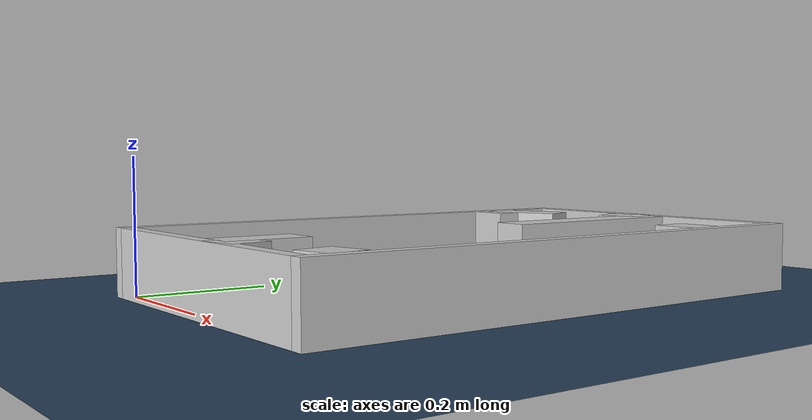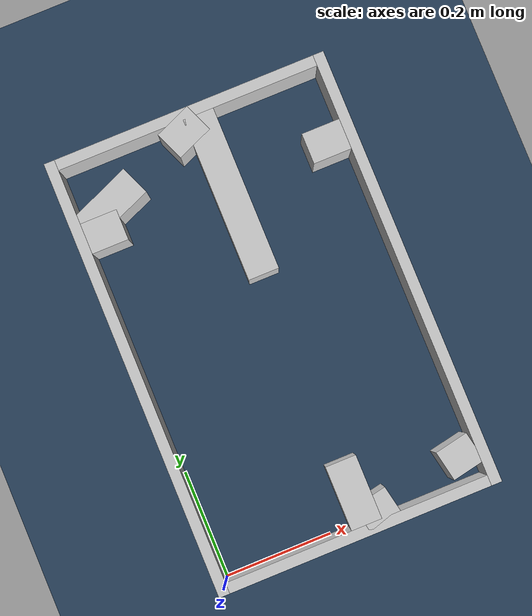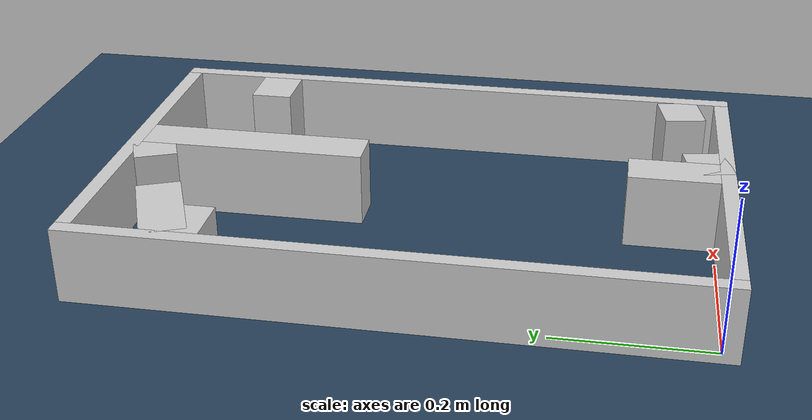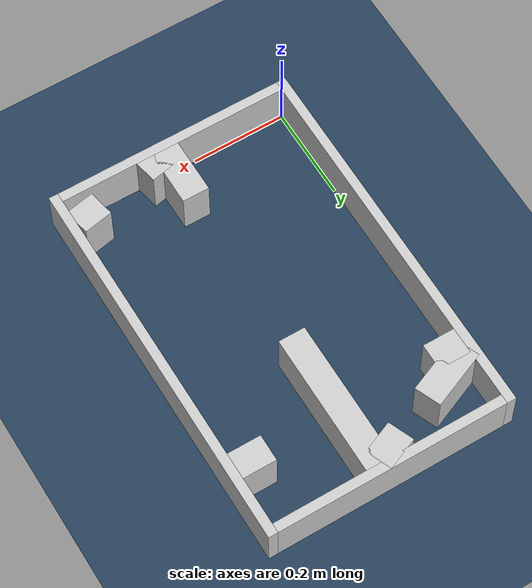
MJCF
<?xml version="1.0" ?>
<mujoco model="generated_real_template">
  <compiler angle="degree"/>
  <option timestep="0.002" integrator="implicitfast" iterations="100" cone="elliptic"/>
  <default>
    <geom density="1"/>
  </default>
  <asset>
    <texture builtin="gradient" height="3072" rgb1="0.3 0.5 0.7" rgb2="0 0 0" type="skybox" width="512"/>
    <texture builtin="checker" height="300" mark="edge" markrgb="0.8 0.8 0.8" name="groundplane" rgb1="0.2 0.3 0.4" rgb2="0.1 0.2 0.3" type="2d" width="300"/>
    <material name="groundplane" reflectance="0.2" texrepeat="5 5" texture="groundplane" texuniform="true"/>
  </asset>
  <worldbody>
    <light dir="0 0 -1" directional="true" pos="0 0 1.5"/>
    <geom name="floor" type="plane" condim="4" friction="0.5 0.005 0.001" material="groundplane" size="0 0 0.05"/>
    <body name="walls">
      <geom name="wall_boundary_left" type="box" condim="4" friction="1.0 0.005 0.0001" rgba="0.8 0.8 0.8 1" pos="-0.010000 0.387500 0.050000" euler="0 0 0.000000" size="0.010000 0.407500 0.050000"/>
      <geom name="wall_boundary_right" type="box" condim="4" friction="1.0 0.005 0.0001" rgba="0.8 0.8 0.8 1" pos="0.500000 0.387500 0.050000" euler="0 0 0.000000" size="0.010000 0.407500 0.050000"/>
      <geom name="wall_boundary_bottom" type="box" condim="4" friction="1.0 0.005 0.0001" rgba="0.8 0.8 0.8 1" pos="0.245000 -0.010000 0.050000" euler="0 0 0.000000" size="0.245000 0.010000 0.050000"/>
      <geom name="wall_boundary_top" type="box" condim="4" friction="1.0 0.005 0.0001" rgba="0.8 0.8 0.8 1" pos="0.245000 0.785000 0.050000" euler="0 0 0.000000" size="0.245000 0.010000 0.050000"/>
      <geom name="wall_inner_1_1" type="box" condim="4" friction="1.0 0.005 0.0001" rgba="0.8 0.8 0.8 1" pos="0.292135 0.014187 0.050000" euler="0 0 11.206119" size="0.032053 0.028500 0.050000"/>
      <geom name="wall_inner_1_2" type="box" condim="4" friction="1.0 0.005 0.0001" rgba="0.8 0.8 0.8 1" pos="0.459167 0.047279 0.050000" euler="0 0 11.206119" size="0.031433 0.028500 0.050000"/>
      <geom name="wall_inner_2_1" type="box" condim="4" friction="1.0 0.005 0.0001" rgba="0.8 0.8 0.8 1" pos="0.058858 0.683978 0.050000" euler="0 0 22.631594" size="0.063768 0.028500 0.050000"/>
      <geom name="wall_inner_2_2" type="box" condim="4" friction="1.0 0.005 0.0001" rgba="0.8 0.8 0.8 1" pos="0.228923 0.754879 0.050000" euler="0 0 22.631594" size="0.035900 0.028500 0.050000"/>
      <geom name="wall_inner_3_1" type="box" condim="4" friction="1.0 0.005 0.0001" rgba="0.8 0.8 0.8 1" pos="0.264100 0.059381 0.050000" euler="0 0 90.000000" size="0.059381 0.028500 0.050000"/>
      <geom name="wall_inner_3_2" type="box" condim="4" friction="1.0 0.005 0.0001" rgba="0.8 0.8 0.8 1" pos="0.264100 0.622624 0.050000" euler="0 0 90.000000" size="0.152376 0.028500 0.050000"/>
      <geom name="wall_inner_4_1" type="box" condim="4" friction="1.0 0.005 0.0001" rgba="0.8 0.8 0.8 1" pos="0.034048 0.644761 0.050000" euler="0 0 0.000000" size="0.034048 0.028500 0.050000"/>
      <geom name="wall_inner_4_2" type="box" condim="4" friction="1.0 0.005 0.0001" rgba="0.8 0.8 0.8 1" pos="0.454465 0.644761 0.050000" euler="0 0 0.000000" size="0.035535 0.028500 0.050000"/>
    </body>
  </worldbody>
</mujoco>
